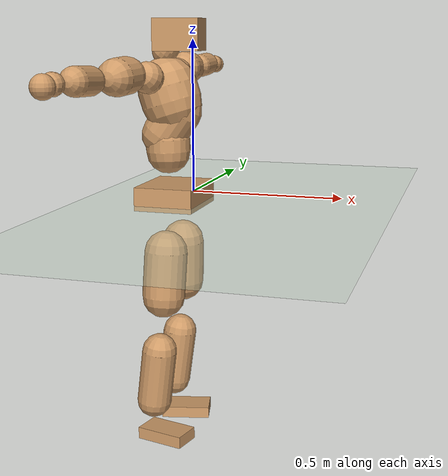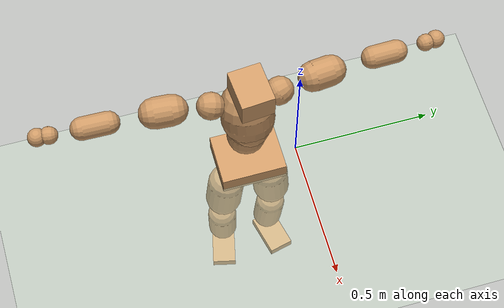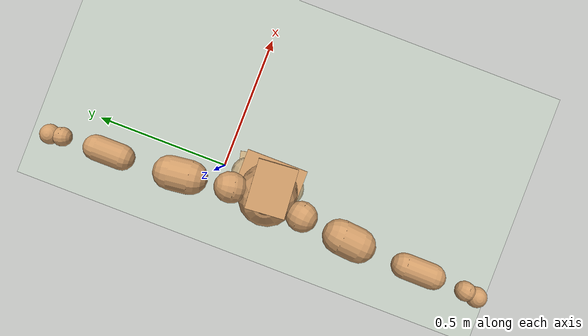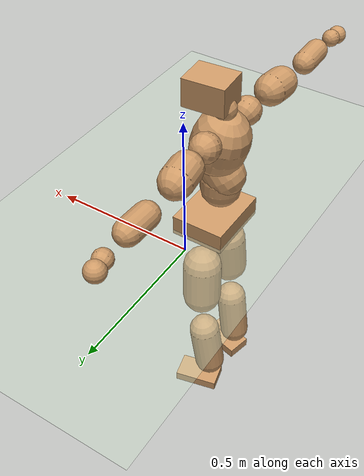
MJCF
<mujoco model="humanoid">
  <compiler coordinate="local" angle="radian"/>
  <default>
    <joint damping="0.0" armature="0.01" stiffness="0.0" limited="true"/>
    <geom conaffinity="1" condim="3" contype="7" margin="0.001" rgba="0.8 0.6 .4 1"/>
  </default>
  <asset>
    <texture type="skybox" builtin="gradient" rgb1=".4 .5 .6" rgb2="0 0 0" width="100" height="100"/>
    <texture builtin="flat" height="1278" mark="cross" markrgb="1 1 1" name="texgeom" random="0.01" rgb1="0.8 0.6 0.4" rgb2="0.8 0.6 0.4" type="cube" width="127"/>
    <texture builtin="checker" height="100" name="texplane" rgb1="0 0 0" rgb2="0.8 0.8 0.8" type="2d" width="100"/>
    <material name="MatPlane" reflectance="0.5" shininess="1" specular="1" texrepeat="60 60" texture="texplane"/>
    <material name="geom" texture="texgeom" texuniform="true"/>
  </asset>
  <worldbody>
    <light cutoff="100" diffuse="1 1 1" dir="-0 0 -1.3" directional="true" exponent="1" pos="0 0 1.3" specular=".1 .1 .1"/>
    <geom conaffinity="1" condim="3" name="floor" pos="0 0 0" rgba="0.8 0.9 0.8 1" size="100 100 .2" type="plane" material="MatPlane"/>
    <body name="Pelvis" pos="0.0006 -0.1779 0.0315">
      <freejoint name="Pelvis"/>
      <geom type="box" contype="1" conaffinity="1" density="5359.374896" pos="-0.0053 0.0000 -0.0121" size="0.0927 0.1172 0.0365" quat="1.0000 0.0000 0.0000 -0.0005" name="Pelvis"/>
      <body name="L_Hip" pos="-0.0051 0.0767 -0.0838">
        <joint name="L_Hip_x" type="hinge" pos="0 0 0" axis="1 0 0" stiffness="1600" damping="160" armature="0.02" range="-180.0000 180.0000"/>
        <joint name="L_Hip_y" type="hinge" pos="0 0 0" axis="0 1 0" stiffness="1600" damping="160" armature="0.02" range="-180.0000 180.0000"/>
        <joint name="L_Hip_z" type="hinge" pos="0 0 0" axis="0 0 1" stiffness="1600" damping="160" armature="0.02" range="-180.0000 180.0000"/>
        <geom type="capsule" contype="1" conaffinity="1" density="2040.816327" size="0.0677" fromto="-0.0034 0.0067 -0.0974 -0.0081 0.0161 -0.2344" name="L_Hip"/>
        <body name="L_Knee" pos="-0.0115 0.0228 -0.3318">
          <joint name="L_Knee_x" type="hinge" pos="0 0 0" axis="1 0 0" stiffness="1600" damping="160" armature="0.02" range="-180.0000 180.0000"/>
          <joint name="L_Knee_y" type="hinge" pos="0 0 0" axis="0 1 0" stiffness="1600" damping="160" armature="0.02" range="-180.0000 180.0000"/>
          <joint name="L_Knee_z" type="hinge" pos="0 0 0" axis="0 0 1" stiffness="1600" damping="160" armature="0.02" range="-180.0000 180.0000"/>
          <geom type="capsule" contype="1" conaffinity="1" density="1234.567901" size="0.0552" fromto="-0.0111 -0.0022 -0.0844 -0.0337 -0.0067 -0.2566" name="L_Knee"/>
          <body name="L_Ankle" pos="-0.0448 -0.0089 -0.341">
            <joint name="L_Ankle_x" type="hinge" pos="0 0 0" axis="1 0 0" stiffness="1600" damping="160" armature="0.02" range="-180.0000 180.0000"/>
            <joint name="L_Ankle_y" type="hinge" pos="0 0 0" axis="0 1 0" stiffness="1600" damping="160" armature="0.02" range="-180.0000 180.0000"/>
            <joint name="L_Ankle_z" type="hinge" pos="0 0 0" axis="0 0 1" stiffness="1600" damping="160" armature="0.02" range="-180.0000 180.0000"/>
            <geom type="box" contype="1" conaffinity="1" density="999.999968" pos="0.0528 0.0124 -0.0243" size="0.0792 0.0465 0.0183" quat="0.9934 0.0000 0.0000 0.1149" name="L_Ankle"/>
            <body name="L_Toe" pos="0.1056 0.0248 -0.0486">
              <joint name="L_Toe_x" type="hinge" pos="0 0 0" axis="1 0 0" stiffness="1000" damping="100" armature="0.02" range="-180.0000 180.0000"/>
              <joint name="L_Toe_y" type="hinge" pos="0 0 0" axis="0 1 0" stiffness="1000" damping="100" armature="0.02" range="-180.0000 180.0000"/>
              <joint name="L_Toe_z" type="hinge" pos="0 0 0" axis="0 0 1" stiffness="1000" damping="100" armature="0.02" range="-180.0000 180.0000"/>
              <geom type="box" contype="1" conaffinity="1" density="8214179.278808" pos="0.0000 0.0000 0.0236" size="0.0009 0.0023 0.0009" quat="0.9926 0.0000 0.0000 0.1215" name="L_Toe"/>
            </body>
          </body>
        </body>
      </body>
      <body name="R_Hip" pos="-0.0032 -0.0756 -0.083">
        <joint name="R_Hip_x" type="hinge" pos="0 0 0" axis="1 0 0" stiffness="1600" damping="160" armature="0.02" range="-180.0000 180.0000"/>
        <joint name="R_Hip_y" type="hinge" pos="0 0 0" axis="0 1 0" stiffness="1600" damping="160" armature="0.02" range="-180.0000 180.0000"/>
        <joint name="R_Hip_z" type="hinge" pos="0 0 0" axis="0 0 1" stiffness="1600" damping="160" armature="0.02" range="-180.0000 180.0000"/>
        <geom type="capsule" contype="1" conaffinity="1" density="2040.816327" size="0.0671" fromto="-0.0040 -0.0078 -0.0967 -0.0098 -0.0192 -0.2387" name="R_Hip"/>
        <body name="R_Knee" pos="-0.0138 -0.027 -0.3354">
          <joint name="R_Knee_x" type="hinge" pos="0 0 0" axis="1 0 0" stiffness="1600" damping="160" armature="0.02" range="-180.0000 180.0000"/>
          <joint name="R_Knee_y" type="hinge" pos="0 0 0" axis="0 1 0" stiffness="1600" damping="160" armature="0.02" range="-180.0000 180.0000"/>
          <joint name="R_Knee_z" type="hinge" pos="0 0 0" axis="0 0 1" stiffness="1600" damping="160" armature="0.02" range="-180.0000 180.0000"/>
          <geom type="capsule" contype="1" conaffinity="1" density="1234.567901" size="0.0552" fromto="-0.0109 0.0026 -0.0845 -0.0334 0.0081 -0.2575" name="R_Knee"/>
          <body name="R_Ankle" pos="-0.0443 0.0107 -0.342">
            <joint name="R_Ankle_x" type="hinge" pos="0 0 0" axis="1 0 0" stiffness="1600" damping="160" armature="0.02" range="-180.0000 180.0000"/>
            <joint name="R_Ankle_y" type="hinge" pos="0 0 0" axis="0 1 0" stiffness="1600" damping="160" armature="0.02" range="-180.0000 180.0000"/>
            <joint name="R_Ankle_z" type="hinge" pos="0 0 0" axis="0 0 1" stiffness="1600" damping="160" armature="0.02" range="-180.0000 180.0000"/>
            <geom type="box" contype="1" conaffinity="1" density="999.999961" pos="0.0545 -0.0128 -0.0211" size="0.0783 0.045 0.0189" quat="0.9934 0.0000 0.0000 -0.1151" name="R_Ankle"/>
            <body name="R_Toe" pos="0.1091 -0.0256 -0.0422">
              <joint name="R_Toe_x" type="hinge" pos="0 0 0" axis="1 0 0" stiffness="1000" damping="100" armature="0.02" range="-180.0000 180.0000"/>
              <joint name="R_Toe_y" type="hinge" pos="0 0 0" axis="0 1 0" stiffness="1000" damping="100" armature="0.02" range="-180.0000 180.0000"/>
              <joint name="R_Toe_z" type="hinge" pos="0 0 0" axis="0 0 1" stiffness="1000" damping="100" armature="0.02" range="-180.0000 180.0000"/>
              <geom type="box" contype="1" conaffinity="1" density="7947897.315805" pos="0.0000 0.0000 0.0214" size="0.0009 0.0023 0.001" quat="0.9945 0.0000 0.0000 -0.1046" name="R_Toe"/>
            </body>
          </body>
        </body>
      </body>
      <body name="Torso" pos="-0.0237 -0.0011 0.0945">
        <joint name="Torso_x" type="hinge" pos="0 0 0" axis="1 0 0" stiffness="2000" damping="200" armature="0.02" range="-180.0000 180.0000"/>
        <joint name="Torso_y" type="hinge" pos="0 0 0" axis="0 1 0" stiffness="2000" damping="200" armature="0.02" range="-180.0000 180.0000"/>
        <joint name="Torso_z" type="hinge" pos="0 0 0" axis="0 0 1" stiffness="2000" damping="200" armature="0.02" range="-180.0000 180.0000"/>
        <geom type="capsule" contype="1" conaffinity="1" density="2040.816327" size="0.0694" fromto="-0.0021 0.0007 0.0694 -0.0009 0.0003 0.0304" name="Torso"/>
        <body name="Spine" pos="-0.003 0.001 0.0998">
          <joint name="Spine_x" type="hinge" pos="0 0 0" axis="1 0 0" stiffness="2000" damping="200" armature="0.02" range="-180.0000 180.0000"/>
          <joint name="Spine_y" type="hinge" pos="0 0 0" axis="0 1 0" stiffness="2000" damping="200" armature="0.02" range="-180.0000 180.0000"/>
          <joint name="Spine_z" type="hinge" pos="0 0 0" axis="0 0 1" stiffness="2000" damping="200" armature="0.02" range="-180.0000 180.0000"/>
          <geom type="capsule" contype="1" conaffinity="1" density="2040.816327" size="0.0703" fromto="0.0397 0.0033 0.0579 -0.0116 -0.0010 -0.0169" name="Spine"/>
          <body name="Chest" pos="0.0281 0.0023 0.0411">
            <joint name="Chest_x" type="hinge" pos="0 0 0" axis="1 0 0" stiffness="2000" damping="200" armature="0.02" range="-180.0000 180.0000"/>
            <joint name="Chest_y" type="hinge" pos="0 0 0" axis="0 1 0" stiffness="2000" damping="200" armature="0.02" range="-180.0000 180.0000"/>
            <joint name="Chest_z" type="hinge" pos="0 0 0" axis="0 0 1" stiffness="2000" damping="200" armature="0.02" range="-180.0000 180.0000"/>
            <geom type="capsule" contype="1" conaffinity="1" density="2040.816327" size="0.0941" fromto="-0.0282 -0.0001 0.0897 -0.0134 -0.0000 0.0426" name="Chest"/>
            <body name="Neck" pos="-0.0515 0.0011 0.181">
              <joint name="Neck_x" type="hinge" pos="0 0 0" axis="1 0 0" stiffness="1000" damping="100" armature="0.02" range="-180.0000 180.0000"/>
              <joint name="Neck_y" type="hinge" pos="0 0 0" axis="0 1 0" stiffness="1000" damping="100" armature="0.02" range="-180.0000 180.0000"/>
              <joint name="Neck_z" type="hinge" pos="0 0 0" axis="0 0 1" stiffness="1000" damping="100" armature="0.02" range="-180.0000 180.0000"/>
              <geom type="capsule" contype="1" conaffinity="1" density="1000" size="0.0386" fromto="0.0262 0.0009 0.0283 0.0150 0.0005 0.0161" name="Neck"/>
              <body name="Head" pos="0.0412 0.0014 0.0445">
                <joint name="Head_x" type="hinge" pos="0 0 0" axis="1 0 0" stiffness="1000" damping="100" armature="0.02" range="-180.0000 180.0000"/>
                <joint name="Head_y" type="hinge" pos="0 0 0" axis="0 1 0" stiffness="1000" damping="100" armature="0.02" range="-180.0000 180.0000"/>
                <joint name="Head_z" type="hinge" pos="0 0 0" axis="0 0 1" stiffness="1000" damping="100" armature="0.02" range="-180.0000 180.0000"/>
                <geom type="box" contype="1" conaffinity="1" density="2249.999903" pos="0.0216 0.0017 0.0232" size="0.0716 0.0574 0.0489" quat="0.9992 0.0000 0.0000 0.0391" name="Head"/>
              </body>
            </body>
            <body name="L_Thorax" pos="-0.0339 0.0743 0.1089">
              <joint name="L_Thorax_x" type="hinge" pos="0 0 0" axis="1 0 0" stiffness="1000" damping="100" armature="0.02" range="-180.0000 180.0000"/>
              <joint name="L_Thorax_y" type="hinge" pos="0 0 0" axis="0 1 0" stiffness="1000" damping="100" armature="0.02" range="-180.0000 180.0000"/>
              <joint name="L_Thorax_z" type="hinge" pos="0 0 0" axis="0 0 1" stiffness="1000" damping="100" armature="0.02" range="-180.0000 180.0000"/>
              <geom type="capsule" contype="1" conaffinity="1" density="1000" size="0.0488" fromto="-0.0053 0.0453 0.0175 -0.0044 0.0380 0.0147" name="L_Thorax"/>
              <body name="L_Shoulder" pos="-0.0097 0.0833 0.0322">
                <joint name="L_Shoulder_x" type="hinge" pos="0 0 0" axis="1 0 0" stiffness="1000" damping="100" armature="0.02" range="-720.0000 720.0000"/>
                <joint name="L_Shoulder_y" type="hinge" pos="0 0 0" axis="0 1 0" stiffness="1000" damping="100" armature="0.02" range="-720.0000 720.0000"/>
                <joint name="L_Shoulder_z" type="hinge" pos="0 0 0" axis="0 0 1" stiffness="1000" damping="100" armature="0.02" range="-720.0000 720.0000"/>
                <geom type="capsule" contype="1" conaffinity="1" density="1000" size="0.0535" fromto="-0.0100 0.0829 -0.0030 -0.0177 0.1469 -0.0054" name="L_Shoulder"/>
                <body name="L_Elbow" pos="-0.0277 0.2298 -0.0084">
                  <joint name="L_Elbow_x" type="hinge" pos="0 0 0" axis="1 0 0" stiffness="1000" damping="100" armature="0.02" range="-720.0000 720.0000"/>
                  <joint name="L_Elbow_y" type="hinge" pos="0 0 0" axis="0 1 0" stiffness="1000" damping="100" armature="0.02" range="-720.0000 720.0000"/>
                  <joint name="L_Elbow_z" type="hinge" pos="0 0 0" axis="0 0 1" stiffness="1000" damping="100" armature="0.02" range="-720.0000 720.0000"/>
                  <geom type="capsule" contype="1" conaffinity="1" density="1000" size="0.04" fromto="0.0004 0.0699 0.0029 0.0008 0.1531 0.0064" name="L_Elbow"/>
                  <body name="L_Wrist" pos="0.0012 0.223 0.0093">
                    <joint name="L_Wrist_x" type="hinge" pos="0 0 0" axis="1 0 0" stiffness="600" damping="60" armature="0.02" range="-180.0000 180.0000"/>
                    <joint name="L_Wrist_y" type="hinge" pos="0 0 0" axis="0 1 0" stiffness="600" damping="60" armature="0.02" range="-180.0000 180.0000"/>
                    <joint name="L_Wrist_z" type="hinge" pos="0 0 0" axis="0 0 1" stiffness="600" damping="60" armature="0.02" range="-180.0000 180.0000"/>
                    <geom type="capsule" contype="1" conaffinity="1" density="1000" size="0.0297" fromto="-0.0062 0.0378 -0.0045 -0.0066 0.0397 -0.0048" name="L_Wrist"/>
                    <body name="L_Hand" pos="-0.0128 0.0775 -0.0093">
                      <joint name="L_Hand_x" type="hinge" pos="0 0 0" axis="1 0 0" stiffness="600" damping="60" armature="0.02" range="-180.0000 180.0000"/>
                      <joint name="L_Hand_y" type="hinge" pos="0 0 0" axis="0 1 0" stiffness="600" damping="60" armature="0.02" range="-180.0000 180.0000"/>
                      <joint name="L_Hand_z" type="hinge" pos="0 0 0" axis="0 0 1" stiffness="600" damping="60" armature="0.02" range="-180.0000 180.0000"/>
                      <geom type="sphere" contype="1" conaffinity="1" density="1000" size="0.0314" pos="0.0000 0.0000 0.0000" name="L_Hand"/>
                    </body>
                  </body>
                </body>
              </body>
            </body>
            <body name="R_Thorax" pos="-0.0392 -0.0757 0.1072">
              <joint name="R_Thorax_x" type="hinge" pos="0 0 0" axis="1 0 0" stiffness="1000" damping="100" armature="0.02" range="-180.0000 180.0000"/>
              <joint name="R_Thorax_y" type="hinge" pos="0 0 0" axis="0 1 0" stiffness="1000" damping="100" armature="0.02" range="-180.0000 180.0000"/>
              <joint name="R_Thorax_z" type="hinge" pos="0 0 0" axis="0 0 1" stiffness="1000" damping="100" armature="0.02" range="-180.0000 180.0000"/>
              <geom type="capsule" contype="1" conaffinity="1" density="1000" size="0.0484" fromto="-0.0061 -0.0435 0.0160 -0.0063 -0.0454 0.0167" name="R_Thorax"/>
              <body name="R_Shoulder" pos="-0.0124 -0.0889 0.0327">
                <joint name="R_Shoulder_x" type="hinge" pos="0 0 0" axis="1 0 0" stiffness="1000" damping="100" armature="0.02" range="-720.0000 720.0000"/>
                <joint name="R_Shoulder_y" type="hinge" pos="0 0 0" axis="0 1 0" stiffness="1000" damping="100" armature="0.02" range="-720.0000 720.0000"/>
                <joint name="R_Shoulder_z" type="hinge" pos="0 0 0" axis="0 0 1" stiffness="1000" damping="100" armature="0.02" range="-720.0000 720.0000"/>
                <geom type="capsule" contype="1" conaffinity="1" density="1000" size="0.0545" fromto="-0.0077 -0.0841 -0.0037 -0.0134 -0.1455 -0.0065" name="R_Shoulder"/>
                <body name="R_Elbow" pos="-0.0211 -0.2296 -0.0102">
                  <joint name="R_Elbow_x" type="hinge" pos="0 0 0" axis="1 0 0" stiffness="1000" damping="100" armature="0.02" range="-720.0000 720.0000"/>
                  <joint name="R_Elbow_y" type="hinge" pos="0 0 0" axis="0 1 0" stiffness="1000" damping="100" armature="0.02" range="-720.0000 720.0000"/>
                  <joint name="R_Elbow_z" type="hinge" pos="0 0 0" axis="0 0 1" stiffness="1000" damping="100" armature="0.02" range="-720.0000 720.0000"/>
                  <geom type="capsule" contype="1" conaffinity="1" density="1000" size="0.0401" fromto="-0.0002 -0.0701 0.0028 -0.0005 -0.1607 0.0064" name="R_Elbow"/>
                  <body name="R_Wrist" pos="-0.0007 -0.2308 0.0092">
                    <joint name="R_Wrist_x" type="hinge" pos="0 0 0" axis="1 0 0" stiffness="600" damping="60" armature="0.02" range="-180.0000 180.0000"/>
                    <joint name="R_Wrist_y" type="hinge" pos="0 0 0" axis="0 1 0" stiffness="600" damping="60" armature="0.02" range="-180.0000 180.0000"/>
                    <joint name="R_Wrist_z" type="hinge" pos="0 0 0" axis="0 0 1" stiffness="600" damping="60" armature="0.02" range="-180.0000 180.0000"/>
                    <geom type="capsule" contype="1" conaffinity="1" density="1000" size="0.0308" fromto="-0.0052 -0.0387 -0.0036 -0.0055 -0.0406 -0.0037" name="R_Wrist"/>
                    <body name="R_Hand" pos="-0.0106 -0.0793 -0.0073">
                      <joint name="R_Hand_x" type="hinge" pos="0 0 0" axis="1 0 0" stiffness="600" damping="60" armature="0.02" range="-180.0000 180.0000"/>
                      <joint name="R_Hand_y" type="hinge" pos="0 0 0" axis="0 1 0" stiffness="600" damping="60" armature="0.02" range="-180.0000 180.0000"/>
                      <joint name="R_Hand_z" type="hinge" pos="0 0 0" axis="0 0 1" stiffness="600" damping="60" armature="0.02" range="-180.0000 180.0000"/>
                      <geom type="sphere" contype="1" conaffinity="1" density="1000" size="0.0321" pos="0.0000 0.0000 0.0000" name="R_Hand"/>
                    </body>
                  </body>
                </body>
              </body>
            </body>
          </body>
        </body>
      </body>
    </body>
  </worldbody>
  <actuator>
    <motor name="L_Hip_x" joint="L_Hip_x" gear="500"/>
    <motor name="L_Hip_y" joint="L_Hip_y" gear="500"/>
    <motor name="L_Hip_z" joint="L_Hip_z" gear="500"/>
    <motor name="L_Knee_x" joint="L_Knee_x" gear="500"/>
    <motor name="L_Knee_y" joint="L_Knee_y" gear="500"/>
    <motor name="L_Knee_z" joint="L_Knee_z" gear="500"/>
    <motor name="L_Ankle_x" joint="L_Ankle_x" gear="500"/>
    <motor name="L_Ankle_y" joint="L_Ankle_y" gear="500"/>
    <motor name="L_Ankle_z" joint="L_Ankle_z" gear="500"/>
    <motor name="L_Toe_x" joint="L_Toe_x" gear="500"/>
    <motor name="L_Toe_y" joint="L_Toe_y" gear="500"/>
    <motor name="L_Toe_z" joint="L_Toe_z" gear="500"/>
    <motor name="R_Hip_x" joint="R_Hip_x" gear="500"/>
    <motor name="R_Hip_y" joint="R_Hip_y" gear="500"/>
    <motor name="R_Hip_z" joint="R_Hip_z" gear="500"/>
    <motor name="R_Knee_x" joint="R_Knee_x" gear="500"/>
    <motor name="R_Knee_y" joint="R_Knee_y" gear="500"/>
    <motor name="R_Knee_z" joint="R_Knee_z" gear="500"/>
    <motor name="R_Ankle_x" joint="R_Ankle_x" gear="500"/>
    <motor name="R_Ankle_y" joint="R_Ankle_y" gear="500"/>
    <motor name="R_Ankle_z" joint="R_Ankle_z" gear="500"/>
    <motor name="R_Toe_x" joint="R_Toe_x" gear="500"/>
    <motor name="R_Toe_y" joint="R_Toe_y" gear="500"/>
    <motor name="R_Toe_z" joint="R_Toe_z" gear="500"/>
    <motor name="Torso_x" joint="Torso_x" gear="500"/>
    <motor name="Torso_y" joint="Torso_y" gear="500"/>
    <motor name="Torso_z" joint="Torso_z" gear="500"/>
    <motor name="Spine_x" joint="Spine_x" gear="500"/>
    <motor name="Spine_y" joint="Spine_y" gear="500"/>
    <motor name="Spine_z" joint="Spine_z" gear="500"/>
    <motor name="Chest_x" joint="Chest_x" gear="500"/>
    <motor name="Chest_y" joint="Chest_y" gear="500"/>
    <motor name="Chest_z" joint="Chest_z" gear="500"/>
    <motor name="Neck_x" joint="Neck_x" gear="500"/>
    <motor name="Neck_y" joint="Neck_y" gear="500"/>
    <motor name="Neck_z" joint="Neck_z" gear="500"/>
    <motor name="Head_x" joint="Head_x" gear="500"/>
    <motor name="Head_y" joint="Head_y" gear="500"/>
    <motor name="Head_z" joint="Head_z" gear="500"/>
    <motor name="L_Thorax_x" joint="L_Thorax_x" gear="500"/>
    <motor name="L_Thorax_y" joint="L_Thorax_y" gear="500"/>
    <motor name="L_Thorax_z" joint="L_Thorax_z" gear="500"/>
    <motor name="L_Shoulder_x" joint="L_Shoulder_x" gear="500"/>
    <motor name="L_Shoulder_y" joint="L_Shoulder_y" gear="500"/>
    <motor name="L_Shoulder_z" joint="L_Shoulder_z" gear="500"/>
    <motor name="L_Elbow_x" joint="L_Elbow_x" gear="500"/>
    <motor name="L_Elbow_y" joint="L_Elbow_y" gear="500"/>
    <motor name="L_Elbow_z" joint="L_Elbow_z" gear="500"/>
    <motor name="L_Wrist_x" joint="L_Wrist_x" gear="500"/>
    <motor name="L_Wrist_y" joint="L_Wrist_y" gear="500"/>
    <motor name="L_Wrist_z" joint="L_Wrist_z" gear="500"/>
    <motor name="L_Hand_x" joint="L_Hand_x" gear="500"/>
    <motor name="L_Hand_y" joint="L_Hand_y" gear="500"/>
    <motor name="L_Hand_z" joint="L_Hand_z" gear="500"/>
    <motor name="R_Thorax_x" joint="R_Thorax_x" gear="500"/>
    <motor name="R_Thorax_y" joint="R_Thorax_y" gear="500"/>
    <motor name="R_Thorax_z" joint="R_Thorax_z" gear="500"/>
    <motor name="R_Shoulder_x" joint="R_Shoulder_x" gear="500"/>
    <motor name="R_Shoulder_y" joint="R_Shoulder_y" gear="500"/>
    <motor name="R_Shoulder_z" joint="R_Shoulder_z" gear="500"/>
    <motor name="R_Elbow_x" joint="R_Elbow_x" gear="500"/>
    <motor name="R_Elbow_y" joint="R_Elbow_y" gear="500"/>
    <motor name="R_Elbow_z" joint="R_Elbow_z" gear="500"/>
    <motor name="R_Wrist_x" joint="R_Wrist_x" gear="500"/>
    <motor name="R_Wrist_y" joint="R_Wrist_y" gear="500"/>
    <motor name="R_Wrist_z" joint="R_Wrist_z" gear="500"/>
    <motor name="R_Hand_x" joint="R_Hand_x" gear="500"/>
    <motor name="R_Hand_y" joint="R_Hand_y" gear="500"/>
    <motor name="R_Hand_z" joint="R_Hand_z" gear="500"/>
  </actuator>
  <contact>
    <exclude body1="Torso" body2="Chest"/>
    <exclude body1="Head" body2="Chest"/>
    <exclude body1="R_Knee" body2="R_Toe"/>
    <exclude body1="R_Knee" body2="L_Ankle"/>
    <exclude body1="R_Knee" body2="L_Toe"/>
    <exclude body1="L_Knee" body2="L_Toe"/>
    <exclude body1="L_Knee" body2="R_Ankle"/>
    <exclude body1="L_Knee" body2="R_Toe"/>
    <exclude body1="L_Shoulder" body2="Chest"/>
    <exclude body1="R_Shoulder" body2="Chest"/>
  </contact>
  <sensor/>
  <size njmax="700" nconmax="700"/>
</mujoco>
